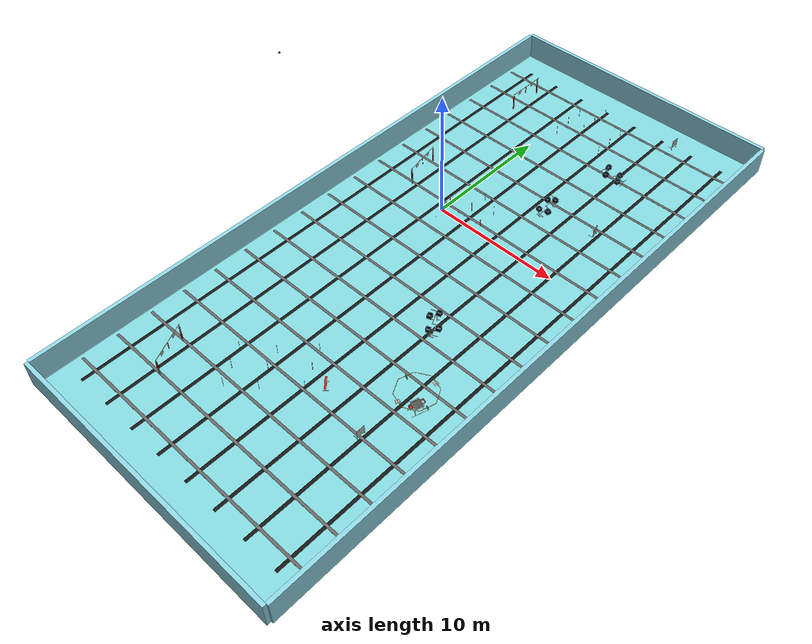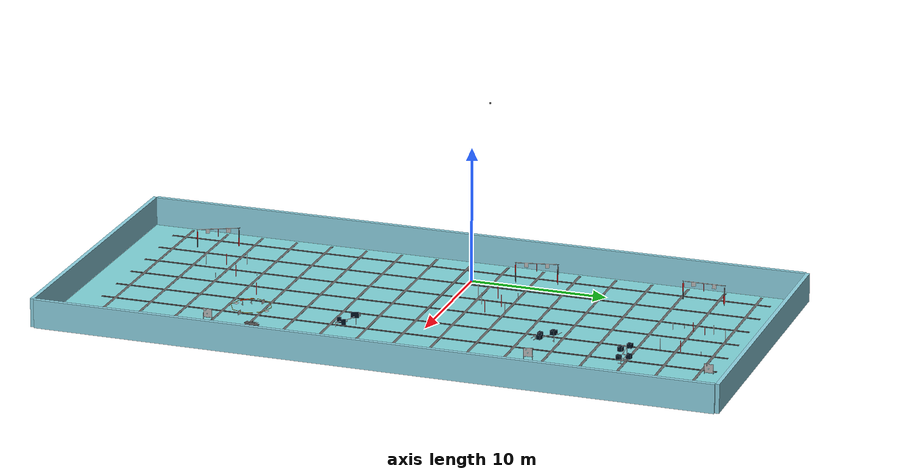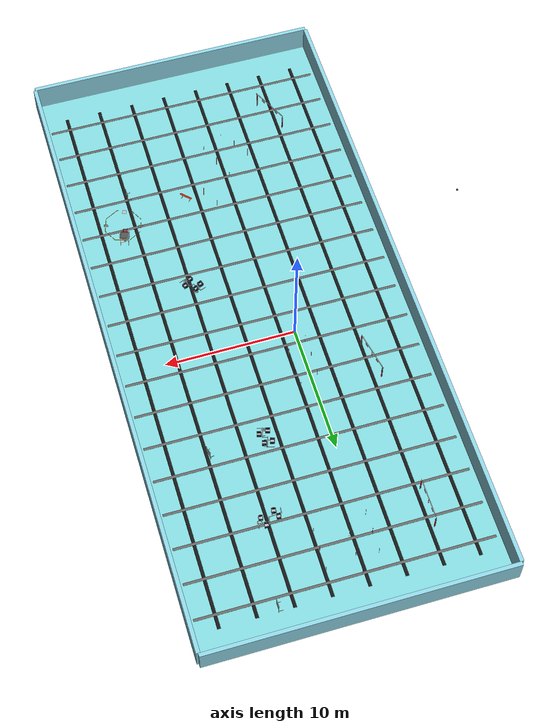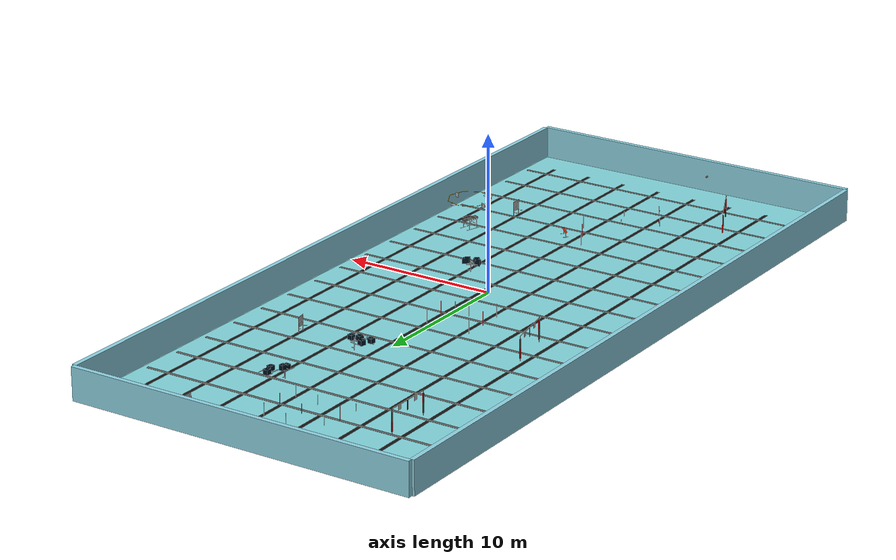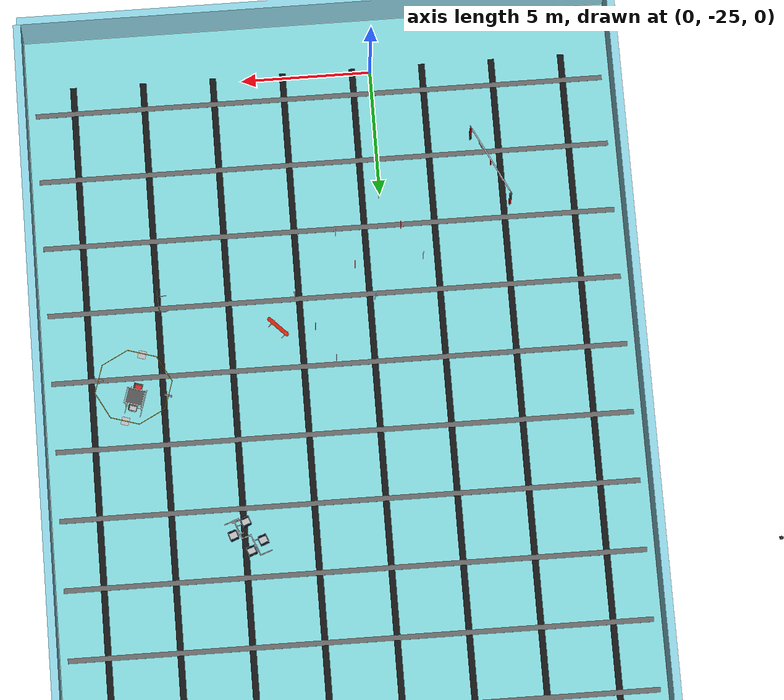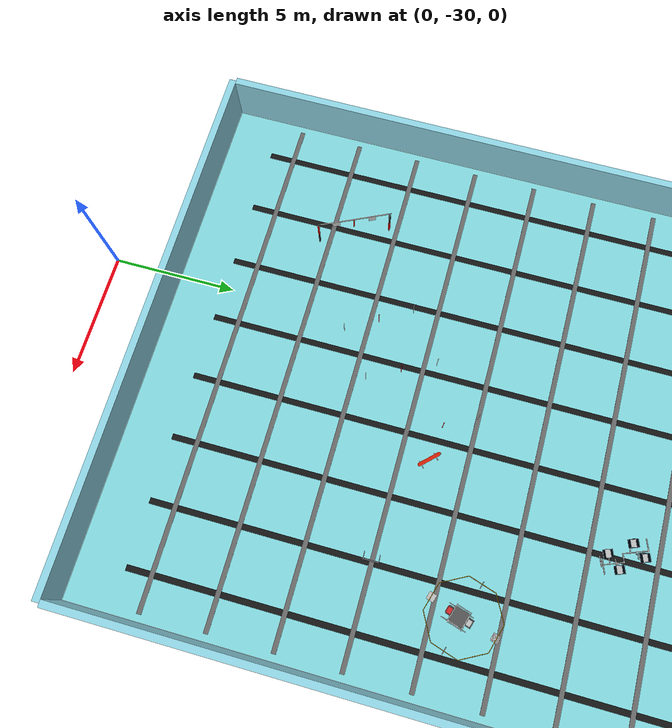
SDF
<sdf version='1.7'>
  <world name='default'>
    <light name='sun' type='directional'>
      <cast_shadows>0</cast_shadows>
      <pose>0 0 10 0 -0 0</pose>
      <diffuse>0.8 0.8 0.8 1</diffuse>
      <specular>0.2 0.2 0.2 1</specular>
      <attenuation>
        <range>1000</range>
        <constant>0.9</constant>
        <linear>0.01</linear>
        <quadratic>0.001</quadratic>
      </attenuation>
      <direction>-0.5 0.1 -0.9</direction>
      <spot>
        <inner_angle>0</inner_angle>
        <outer_angle>0</outer_angle>
        <falloff>0</falloff>
      </spot>
    </light>
    <light name='user_point_light_0' type='point'>
      <pose>-6 -3.5 1 0 -0 0</pose>
      <diffuse>0.5 0.5 0.5 1</diffuse>
      <specular>0.1 0.1 0.1 1</specular>
      <attenuation>
        <range>20</range>
        <constant>0.5</constant>
        <linear>0.01</linear>
        <quadratic>0.001</quadratic>
      </attenuation>
      <cast_shadows>0</cast_shadows>
      <direction>0 0 -1</direction>
    </light>
    <gravity>0 0 -9.8</gravity>
    <magnetic_field>6e-06 2.3e-05 -4.2e-05</magnetic_field>
    <atmosphere type='adiabatic'/>
    <physics type='ode'>
      <max_step_size>0.001</max_step_size>
      <real_time_factor>1</real_time_factor>
      <real_time_update_rate>1000</real_time_update_rate>
    </physics>
    <scene>
      <ambient>0.4 0.4 0.4 1</ambient>
      <background>0.7 0.7 0.7 1</background>
      <shadows>1</shadows>
    </scene>
    <wind/>
    <spherical_coordinates>
      <surface_model>EARTH_WGS84</surface_model>
      <latitude_deg>0</latitude_deg>
      <longitude_deg>0</longitude_deg>
      <elevation>0</elevation>
      <heading_deg>0</heading_deg>
    </spherical_coordinates>
    <model name='woollett_lane_overlay'>
      <static>1</static>
      <pose>2 -3 -2.1376 0 0 0</pose>
      <link name='woollett_lane_overlay_link'>
        <visual name='woollett_floor_surface'>
          <pose>0 0 0 0 0 0</pose>
          <geometry>
            <box>
              <size>22.84 49.98 0.008</size>
            </box>
          </geometry>
          <material>
            <ambient>0.5 0.83 0.85 1</ambient>
            <diffuse>0.5 0.83 0.85 1</diffuse>
            <specular>0.1 0.1 0.1 1</specular>
          </material>
        </visual>
        <visual name='woollett_long_lane_1'>
          <pose>-9.59 0 0.007 0 0 0</pose>
          <geometry><box><size>0.25 46 0.006</size></box></geometry>
          <material><ambient>0.08 0.08 0.08 1</ambient><diffuse>0.08 0.08 0.08 1</diffuse></material>
        </visual>
        <visual name='woollett_long_lane_2'>
          <pose>-6.85 0 0.007 0 0 0</pose>
          <geometry><box><size>0.25 46 0.006</size></box></geometry>
          <material><ambient>0.08 0.08 0.08 1</ambient><diffuse>0.08 0.08 0.08 1</diffuse></material>
        </visual>
        <visual name='woollett_long_lane_3'>
          <pose>-4.11 0 0.007 0 0 0</pose>
          <geometry><box><size>0.25 46 0.006</size></box></geometry>
          <material><ambient>0.08 0.08 0.08 1</ambient><diffuse>0.08 0.08 0.08 1</diffuse></material>
        </visual>
        <visual name='woollett_long_lane_4'>
          <pose>-1.37 0 0.007 0 0 0</pose>
          <geometry><box><size>0.25 46 0.006</size></box></geometry>
          <material><ambient>0.08 0.08 0.08 1</ambient><diffuse>0.08 0.08 0.08 1</diffuse></material>
        </visual>
        <visual name='woollett_long_lane_5'>
          <pose>1.37 0 0.007 0 0 0</pose>
          <geometry><box><size>0.25 46 0.006</size></box></geometry>
          <material><ambient>0.08 0.08 0.08 1</ambient><diffuse>0.08 0.08 0.08 1</diffuse></material>
        </visual>
        <visual name='woollett_long_lane_6'>
          <pose>4.11 0 0.007 0 0 0</pose>
          <geometry><box><size>0.25 46 0.006</size></box></geometry>
          <material><ambient>0.08 0.08 0.08 1</ambient><diffuse>0.08 0.08 0.08 1</diffuse></material>
        </visual>
        <visual name='woollett_long_lane_7'>
          <pose>6.85 0 0.007 0 0 0</pose>
          <geometry><box><size>0.25 46 0.006</size></box></geometry>
          <material><ambient>0.08 0.08 0.08 1</ambient><diffuse>0.08 0.08 0.08 1</diffuse></material>
        </visual>
        <visual name='woollett_long_lane_8'>
          <pose>9.59 0 0.007 0 0 0</pose>
          <geometry><box><size>0.25 46 0.006</size></box></geometry>
          <material><ambient>0.08 0.08 0.08 1</ambient><diffuse>0.08 0.08 0.08 1</diffuse></material>
        </visual>
      </link>
    </model>
    <model name='pool_floor'>
      <static>1</static>
      <pose>2 -3 0 0 0 0</pose>
      <link name='pool_floor_link'>
        <collision name='pool_floor_collision'>
          <geometry>
            <box>
              <size>22.86 50 0.1</size>
            </box>
          </geometry>
          <pose>0 0 -2.1836 0 0 0</pose>
          <max_contacts>10</max_contacts>
          <surface>
            <friction>
              <ode>
                <mu>0.5</mu>
                <mu2>0.5</mu2>
              </ode>
            </friction>
            <contact>
              <ode/>
            </contact>
            <bounce/>
          </surface>
        </collision>
        <self_collide>0</self_collide>
        <enable_wind>0</enable_wind>
        <kinematic>0</kinematic>
      </link>
    </model>
    <!-- North wall: inner face at y=22 (50 m water length). -->
    <model name='wall_north'>
      <static>1</static>
      <pose>2 22.15 -1.0668 0 0 0</pose>
      <link name='wall_north_link'>
        <collision name='wall_north_collision'>
          <geometry>
            <box>
              <size>23.16 0.3 2.1336</size>
            </box>
          </geometry>
          <max_contacts>10</max_contacts>
          <surface>
            <friction>
              <ode>
                <mu>0.5</mu>
                <mu2>0.5</mu2>
              </ode>
            </friction>
            <contact>
              <ode/>
            </contact>
            <bounce/>
          </surface>
        </collision>
        <visual name='wall_north_visual'>
          <geometry>
            <box>
              <size>23.16 0.3 2.1336</size>
            </box>
          </geometry>
          <material>
            <ambient>0.55 0.82 0.88 1</ambient>
            <diffuse>0.55 0.82 0.88 1</diffuse>
            <specular>0.15 0.15 0.15 1</specular>
          </material>
        </visual>
        <self_collide>0</self_collide>
        <enable_wind>0</enable_wind>
        <kinematic>0</kinematic>
      </link>
    </model>
    <!-- South wall: inner face at y=-28 (50 m water length). -->
    <model name='wall_south'>
      <static>1</static>
      <pose>2 -28.15 -1.0668 0 0 0</pose>
      <link name='wall_south_link'>
        <collision name='wall_south_collision'>
          <geometry>
            <box>
              <size>23.16 0.3 2.1336</size>
            </box>
          </geometry>
          <max_contacts>10</max_contacts>
          <surface>
            <friction>
              <ode>
                <mu>0.5</mu>
                <mu2>0.5</mu2>
              </ode>
            </friction>
            <contact>
              <ode/>
            </contact>
            <bounce/>
          </surface>
        </collision>
        <visual name='wall_south_visual'>
          <geometry>
            <box>
              <size>23.16 0.3 2.1336</size>
            </box>
          </geometry>
          <material>
            <ambient>0.55 0.82 0.88 1</ambient>
            <diffuse>0.55 0.82 0.88 1</diffuse>
            <specular>0.15 0.15 0.15 1</specular>
          </material>
        </visual>
        <self_collide>0</self_collide>
        <enable_wind>0</enable_wind>
        <kinematic>0</kinematic>
      </link>
    </model>
    <!-- West wall: inner face at x=-9.43 (22.86 m / 25 yd water width). -->
    <model name='wall_west'>
      <static>1</static>
      <pose>-9.58 -3 -1.0668 0 0 0</pose>
      <link name='wall_west_link'>
        <collision name='wall_west_collision'>
          <geometry>
            <box>
              <size>0.3 50 2.1336</size>
            </box>
          </geometry>
          <max_contacts>10</max_contacts>
          <surface>
            <friction>
              <ode>
                <mu>0.5</mu>
                <mu2>0.5</mu2>
              </ode>
            </friction>
            <contact>
              <ode/>
            </contact>
            <bounce/>
          </surface>
        </collision>
        <visual name='wall_west_visual'>
          <geometry>
            <box>
              <size>0.3 50 2.1336</size>
            </box>
          </geometry>
          <material>
            <ambient>0.55 0.82 0.88 1</ambient>
            <diffuse>0.55 0.82 0.88 1</diffuse>
            <specular>0.15 0.15 0.15 1</specular>
          </material>
        </visual>
        <self_collide>0</self_collide>
        <enable_wind>0</enable_wind>
        <kinematic>0</kinematic>
      </link>
    </model>
    <!-- East wall: inner face at x=13.43 (22.86 m / 25 yd water width). -->
    <model name='wall_east'>
      <static>1</static>
      <pose>13.58 -3 -1.0668 0 0 0</pose>
      <link name='wall_east_link'>
        <collision name='wall_east_collision'>
          <geometry>
            <box>
              <size>0.3 50 2.1336</size>
            </box>
          </geometry>
          <max_contacts>10</max_contacts>
          <surface>
            <friction>
              <ode>
                <mu>0.5</mu>
                <mu2>0.5</mu2>
              </ode>
            </friction>
            <contact>
              <ode/>
            </contact>
            <bounce/>
          </surface>
        </collision>
        <visual name='wall_east_visual'>
          <geometry>
            <box>
              <size>0.3 50 2.1336</size>
            </box>
          </geometry>
          <material>
            <ambient>0.55 0.82 0.88 1</ambient>
            <diffuse>0.55 0.82 0.88 1</diffuse>
            <specular>0.15 0.15 0.15 1</specular>
          </material>
        </visual>
        <self_collide>0</self_collide>
        <enable_wind>0</enable_wind>
        <kinematic>0</kinematic>
      </link>
    </model>
    <model name='lane_marker_1'>
      <static>1</static>
      <pose>2 18.92 -2.1286 0 0 0</pose>
      <link name='lane_marker_1_link'>
        <visual name='lane_marker_1_visual'>
          <geometry>
            <box>
              <size>22.26 0.2 0.01</size>
            </box>
          </geometry>
          <material>
            <ambient>0.4 0.4 0.4 1</ambient>
            <diffuse>0.4 0.4 0.4 1</diffuse>
            <specular>0.1 0.1 0.1 1</specular>
          </material>
        </visual>
        <self_collide>0</self_collide>
        <enable_wind>0</enable_wind>
        <kinematic>0</kinematic>
      </link>
    </model>
    <model name='lane_marker_2'>
      <static>1</static>
      <pose>2 16.18 -2.1286 0 0 0</pose>
      <link name='lane_marker_2_link'>
        <visual name='lane_marker_2_visual'>
          <geometry>
            <box>
              <size>22.26 0.2 0.01</size>
            </box>
          </geometry>
          <material>
            <ambient>0.4 0.4 0.4 1</ambient>
            <diffuse>0.4 0.4 0.4 1</diffuse>
            <specular>0.1 0.1 0.1 1</specular>
          </material>
        </visual>
        <self_collide>0</self_collide>
        <enable_wind>0</enable_wind>
        <kinematic>0</kinematic>
      </link>
    </model>
    <model name='lane_marker_3'>
      <static>1</static>
      <pose>2 13.44 -2.1286 0 0 0</pose>
      <link name='lane_marker_3_link'>
        <visual name='lane_marker_3_visual'>
          <geometry>
            <box>
              <size>22.26 0.2 0.01</size>
            </box>
          </geometry>
          <material>
            <ambient>0.4 0.4 0.4 1</ambient>
            <diffuse>0.4 0.4 0.4 1</diffuse>
            <specular>0.1 0.1 0.1 1</specular>
          </material>
        </visual>
        <self_collide>0</self_collide>
        <enable_wind>0</enable_wind>
        <kinematic>0</kinematic>
      </link>
    </model>
    <model name='lane_marker_4'>
      <static>1</static>
      <pose>2 10.70 -2.1286 0 0 0</pose>
      <link name='lane_marker_4_link'>
        <visual name='lane_marker_4_visual'>
          <geometry>
            <box>
              <size>22.26 0.2 0.01</size>
            </box>
          </geometry>
          <material>
            <ambient>0.4 0.4 0.4 1</ambient>
            <diffuse>0.4 0.4 0.4 1</diffuse>
            <specular>0.1 0.1 0.1 1</specular>
          </material>
        </visual>
        <self_collide>0</self_collide>
        <enable_wind>0</enable_wind>
        <kinematic>0</kinematic>
      </link>
    </model>
    <model name='lane_marker_5'>
      <static>1</static>
      <pose>2 7.96 -2.1286 0 0 0</pose>
      <link name='lane_marker_5_link'>
        <visual name='lane_marker_5_visual'>
          <geometry>
            <box>
              <size>22.26 0.2 0.01</size>
            </box>
          </geometry>
          <material>
            <ambient>0.4 0.4 0.4 1</ambient>
            <diffuse>0.4 0.4 0.4 1</diffuse>
            <specular>0.1 0.1 0.1 1</specular>
          </material>
        </visual>
        <self_collide>0</self_collide>
        <enable_wind>0</enable_wind>
        <kinematic>0</kinematic>
      </link>
    </model>
    <model name='lane_marker_6'>
      <static>1</static>
      <pose>2 5.22 -2.1286 0 0 0</pose>
      <link name='lane_marker_6_link'>
        <visual name='lane_marker_6_visual'>
          <geometry>
            <box>
              <size>22.26 0.2 0.01</size>
            </box>
          </geometry>
          <material>
            <ambient>0.4 0.4 0.4 1</ambient>
            <diffuse>0.4 0.4 0.4 1</diffuse>
            <specular>0.1 0.1 0.1 1</specular>
          </material>
        </visual>
        <self_collide>0</self_collide>
        <enable_wind>0</enable_wind>
        <kinematic>0</kinematic>
      </link>
    </model>
    <model name='lane_marker_7'>
      <static>1</static>
      <pose>2 2.48 -2.1286 0 0 0</pose>
      <link name='lane_marker_7_link'>
        <visual name='lane_marker_7_visual'>
          <geometry>
            <box>
              <size>22.26 0.2 0.01</size>
            </box>
          </geometry>
          <material>
            <ambient>0.4 0.4 0.4 1</ambient>
            <diffuse>0.4 0.4 0.4 1</diffuse>
            <specular>0.1 0.1 0.1 1</specular>
          </material>
        </visual>
        <self_collide>0</self_collide>
        <enable_wind>0</enable_wind>
        <kinematic>0</kinematic>
      </link>
    </model>
    <model name='lane_marker_8'>
      <static>1</static>
      <pose>2 -0.26 -2.1286 0 0 0</pose>
      <link name='lane_marker_8_link'>
        <visual name='lane_marker_8_visual'>
          <geometry>
            <box>
              <size>22.26 0.2 0.01</size>
            </box>
          </geometry>
          <material>
            <ambient>0.4 0.4 0.4 1</ambient>
            <diffuse>0.4 0.4 0.4 1</diffuse>
            <specular>0.1 0.1 0.1 1</specular>
          </material>
        </visual>
        <self_collide>0</self_collide>
        <enable_wind>0</enable_wind>
        <kinematic>0</kinematic>
      </link>
    </model>
    <model name='lane_marker_9'>
      <static>1</static>
      <pose>2 -3.00 -2.1286 0 0 0</pose>
      <link name='lane_marker_9_link'>
        <visual name='lane_marker_9_visual'>
          <geometry>
            <box>
              <size>22.26 0.2 0.01</size>
            </box>
          </geometry>
          <material>
            <ambient>0.4 0.4 0.4 1</ambient>
            <diffuse>0.4 0.4 0.4 1</diffuse>
            <specular>0.1 0.1 0.1 1</specular>
          </material>
        </visual>
        <self_collide>0</self_collide>
        <enable_wind>0</enable_wind>
        <kinematic>0</kinematic>
      </link>
    </model>
    <model name='lane_marker_10'>
      <static>1</static>
      <pose>2 -5.74 -2.1286 0 0 0</pose>
      <link name='lane_marker_10_link'>
        <visual name='lane_marker_10_visual'>
          <geometry>
            <box>
              <size>22.26 0.2 0.01</size>
            </box>
          </geometry>
          <material>
            <ambient>0.4 0.4 0.4 1</ambient>
            <diffuse>0.4 0.4 0.4 1</diffuse>
            <specular>0.1 0.1 0.1 1</specular>
          </material>
        </visual>
        <self_collide>0</self_collide>
        <enable_wind>0</enable_wind>
        <kinematic>0</kinematic>
      </link>
    </model>
    <model name='lane_marker_11'>
      <static>1</static>
      <pose>2 -8.48 -2.1286 0 0 0</pose>
      <link name='lane_marker_11_link'>
        <visual name='lane_marker_11_visual'>
          <geometry>
            <box>
              <size>22.26 0.2 0.01</size>
            </box>
          </geometry>
          <material>
            <ambient>0.4 0.4 0.4 1</ambient>
            <diffuse>0.4 0.4 0.4 1</diffuse>
            <specular>0.1 0.1 0.1 1</specular>
          </material>
        </visual>
        <self_collide>0</self_collide>
        <enable_wind>0</enable_wind>
        <kinematic>0</kinematic>
      </link>
    </model>
    <model name='lane_marker_12'>
      <static>1</static>
      <pose>2 -11.22 -2.1286 0 0 0</pose>
      <link name='lane_marker_12_link'>
        <visual name='lane_marker_12_visual'>
          <geometry>
            <box>
              <size>22.26 0.2 0.01</size>
            </box>
          </geometry>
          <material>
            <ambient>0.4 0.4 0.4 1</ambient>
            <diffuse>0.4 0.4 0.4 1</diffuse>
            <specular>0.1 0.1 0.1 1</specular>
          </material>
        </visual>
        <self_collide>0</self_collide>
        <enable_wind>0</enable_wind>
        <kinematic>0</kinematic>
      </link>
    </model>
    <model name='lane_marker_13'>
      <static>1</static>
      <pose>2 -13.96 -2.1286 0 0 0</pose>
      <link name='lane_marker_13_link'>
        <visual name='lane_marker_13_visual'>
          <geometry>
            <box>
              <size>22.26 0.2 0.01</size>
            </box>
          </geometry>
          <material>
            <ambient>0.4 0.4 0.4 1</ambient>
            <diffuse>0.4 0.4 0.4 1</diffuse>
            <specular>0.1 0.1 0.1 1</specular>
          </material>
        </visual>
        <self_collide>0</self_collide>
        <enable_wind>0</enable_wind>
        <kinematic>0</kinematic>
      </link>
    </model>
    <model name='lane_marker_14'>
      <static>1</static>
      <pose>2 -16.70 -2.1286 0 0 0</pose>
      <link name='lane_marker_14_link'>
        <visual name='lane_marker_14_visual'>
          <geometry>
            <box>
              <size>22.26 0.2 0.01</size>
            </box>
          </geometry>
          <material>
            <ambient>0.4 0.4 0.4 1</ambient>
            <diffuse>0.4 0.4 0.4 1</diffuse>
            <specular>0.1 0.1 0.1 1</specular>
          </material>
        </visual>
        <self_collide>0</self_collide>
        <enable_wind>0</enable_wind>
        <kinematic>0</kinematic>
      </link>
    </model>
    <model name='lane_marker_15'>
      <static>1</static>
      <pose>2 -19.44 -2.1286 0 0 0</pose>
      <link name='lane_marker_15_link'>
        <visual name='lane_marker_15_visual'>
          <geometry>
            <box>
              <size>22.26 0.2 0.01</size>
            </box>
          </geometry>
          <material>
            <ambient>0.4 0.4 0.4 1</ambient>
            <diffuse>0.4 0.4 0.4 1</diffuse>
            <specular>0.1 0.1 0.1 1</specular>
          </material>
        </visual>
        <self_collide>0</self_collide>
        <enable_wind>0</enable_wind>
        <kinematic>0</kinematic>
      </link>
    </model>
    <model name='lane_marker_16'>
      <static>1</static>
      <pose>2 -22.18 -2.1286 0 0 0</pose>
      <link name='lane_marker_16_link'>
        <visual name='lane_marker_16_visual'>
          <geometry>
            <box>
              <size>22.26 0.2 0.01</size>
            </box>
          </geometry>
          <material>
            <ambient>0.4 0.4 0.4 1</ambient>
            <diffuse>0.4 0.4 0.4 1</diffuse>
            <specular>0.1 0.1 0.1 1</specular>
          </material>
        </visual>
        <self_collide>0</self_collide>
        <enable_wind>0</enable_wind>
        <kinematic>0</kinematic>
      </link>
    </model>
    <model name='lane_marker_17'>
      <static>1</static>
      <pose>2 -24.92 -2.1286 0 0 0</pose>
      <link name='lane_marker_17_link'>
        <visual name='lane_marker_17_visual'>
          <geometry>
            <box>
              <size>22.26 0.2 0.01</size>
            </box>
          </geometry>
          <material>
            <ambient>0.4 0.4 0.4 1</ambient>
            <diffuse>0.4 0.4 0.4 1</diffuse>
            <specular>0.1 0.1 0.1 1</specular>
          </material>
        </visual>
        <self_collide>0</self_collide>
        <enable_wind>0</enable_wind>
        <kinematic>0</kinematic>
      </link>
    </model>
    <!-- **** 4 × GATE **** -->
    <include>
      <uri>model://robosub_gate</uri>
      <name>robosub_gate_1</name>
      <pose>-5.000000 15.750000 -1.500000 0.000000 0.000000 0.000187</pose>
    </include>
    <include>
      <uri>model://robosub_gate</uri>
      <name>robosub_gate_2</name>
      <pose>-5 3.25 -1.5 0 0 0.2</pose>
    </include>
    <include>
      <uri>model://robosub_gate</uri>
      <name>robosub_gate_4</name>
      <pose>-4.383510 -21.096700 -1.500000 0.000000 0.000000 0.446470</pose>
    </include>
    <!-- **** 4 × TORPEDO TARGET **** -->
    <include>
      <uri>model://robosub_torpedo</uri>
      <name>robosub_torpedo_1</name>
      <pose>7.197310 20.681072 -2.108636 1.570116 -0.000414 3.136814</pose>
    </include>
    <include>
      <uri>model://robosub_torpedo</uri>
      <name>robosub_torpedo_2</name>
      <pose>8.4 8 -2 1.57 0 -2.9</pose>
    </include>
    <include>
      <uri>model://robosub_torpedo</uri>
      <name>robosub_torpedo_4</name>
      <pose>8.665620 -15.808700 -2.000010 1.570030 -0.000209 -3.116060</pose>
    </include>
    <!-- **** 4 × BIN **** -->
    <include>
      <uri>model://robosub_bin</uri>
      <name>robosub_bin_1</name>
      <pose>6.917767 13.716724 -1.607390 0.000000 0.000000 1.455293</pose>
    </include>
    <include>
      <uri>model://robosub_bin</uri>
      <name>robosub_bin_2</name>
      <pose>4.7 6 -1.6 0 0 -0.25</pose>
    </include>
    <include>
      <uri>model://robosub_bin</uri>
      <name>robosub_bin_3</name>
      <pose>6.841690 -7.873360 -1.600000 0.000000 0.000000 0.350000</pose>
    </include>
    <!-- **** 4 × OCTAGON **** -->
    <include>
      <uri>model://robosub_octagon</uri>
      <name>robosub_octagon_4</name>
      <pose>9.934710 -12.970200 -1.950000 0.000000 0.000000 -0.300000</pose>
    </include>
    <!-- **** ANIMALS FOR ALL OCTAGONS **** -->
    <include>
      <uri>model://robosub_octagon_animals</uri>
      <name>robosub_octagon_animals_4</name>
      <pose>8.645010 -12.571200 -0.600000 0.000000 0.000000 -0.300000</pose>
    </include>
    <!-- PATH MARKER -->
    <include>
      <uri>model://robosub_path</uri>
      <name>robosub_path_1</name>
      <pose>4.268290 -15.525900 -2.133600 0.000000 0.000000 2.336730</pose>
    </include>
    <!-- SLALOM PIPES -->
    <include>
      <uri>model://robosub_slalom</uri>
      <name>robosub_slalom_1_1</name>
      <pose>-0.750791 16.256712 -2.087427 0.000000 0.000000 1.570000</pose>
    </include>
    <include>
      <uri>model://robosub_slalom</uri>
      <name>robosub_slalom_1_2</name>
      <pose>0.921462 17.575613 -1.888925 0.000000 0.000000 1.570000</pose>
    </include>
    <include>
      <uri>model://robosub_slalom</uri>
      <name>robosub_slalom_1_3</name>
      <pose>3.249127 16.511126 -2.183931 0.000000 0.000000 1.570000</pose>
    </include>
    <include>
      <uri>model://robosub_slalom</uri>
      <name>robosub_slalom_2_1</name>
      <pose>-0.75 1.75 -1.35 0 0 1.57</pose>
    </include>
    <include>
      <uri>model://robosub_slalom</uri>
      <name>robosub_slalom_2_2</name>
      <pose>0.75 2.5 -1.35 0 0 1.57</pose>
    </include>
    <include>
      <uri>model://robosub_slalom</uri>
      <name>robosub_slalom_2_3</name>
      <pose>2.25 1.75 -1.35 0 0 1.57</pose>
    </include>
    <include>
      <uri>model://robosub_slalom</uri>
      <name>robosub_slalom_4_1</name>
      <pose>-0.746627 -19.014100 -1.350000 0.000000 0.000000 2.104880</pose>
    </include>
    <include>
      <uri>model://robosub_slalom</uri>
      <name>robosub_slalom_4_2</name>
      <pose>1.136370 -17.553400 -1.350000 0.000000 0.000000 2.036010</pose>
    </include>
    <include>
      <uri>model://robosub_slalom</uri>
      <name>robosub_slalom_4_3</name>
      <pose>2.831720 -15.332400 -1.879180 0.000000 0.000000 2.075350</pose>
    </include>
    <gui fullscreen='0'>
      <camera name='user_camera'>
        <!-- Lane A baseline: 3 m behind / above the spawn, looking down-lane. -->
        <pose>-12.5 15.5 2.5 0 0.45 0</pose>
        <view_controller>orbit</view_controller>
        <projection_type>perspective</projection_type>
      </camera>
    </gui>
    <!-- Pool overhead camera model -->
    <model name="pool_camera">
      <static>true</static>
      <pose>-13 -3 9 0 0.65 0</pose>
      <link name="pool_camera_link">
        <pose>0 0 0 0 0 0</pose>
        <visual name="camera_visual">
          <geometry>
            <box>
              <size>0.1 0.1 0.1</size>
            </box>
          </geometry>
          <material>
            <ambient>0.1 0.1 0.1 1</ambient>
            <diffuse>0.1 0.1 0.1 1</diffuse>
          </material>
        </visual>
        <sensor name="camera_sensor" type="camera">
          <update_rate>30.0</update_rate>
          <camera name="pool_camera">
            <horizontal_fov>1.36136</horizontal_fov>
            <image>
              <width>640</width>
              <height>480</height>
              <format>B8G8R8</format>
            </image>
            <clip>
              <near>0.02</near>
              <far>300</far>
            </clip>
            <noise>
              <type>gaussian</type>
              <mean>0.0</mean>
              <stddev>0.007</stddev>
            </noise>
          </camera>
          <plugin name="camera_controller" filename="libgazebo_ros_camera.so">
            <alwaysOn>true</alwaysOn>
            <updateRate>30.0</updateRate>
            <cameraName>pool_camera</cameraName>
            <imageTopicName>image_raw</imageTopicName>
            <cameraInfoTopicName>camera_info</cameraInfoTopicName>
            <frameName>pool_camera_link</frameName>
            <hackBaseline>0.07</hackBaseline>
            <distortionK1>0.0</distortionK1>
            <distortionK2>0.0</distortionK2>
            <distortionK3>0.0</distortionK3>
            <distortionT1>0.0</distortionT1>
            <distortionT2>0.0</distortionT2>
          </plugin>
        </sensor>
      </link>
    </model>
  </world>
</sdf>

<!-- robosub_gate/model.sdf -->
<sdf version="1.6">
	<model name="robosub_gate">
		<static>true</static>
    	<pose>0 0 0 0 0 0</pose>
		<link name="robosub_gate">
			<pose>0 0 0 0 0 0</pose>
			<collision name="robosub_gate_col">
				<pose>0 0 0 0 0 0</pose>
				<geometry>
					<mesh>
						<uri>model://robosub_gate/meshes/gate.dae</uri>
					</mesh>
				</geometry>
			</collision>
			<visual name="robosub_gate_vis">
				<pose>0 0 0 0 0 0</pose>
				<geometry>
					<mesh>
						<uri>model://robosub_gate/meshes/gate.dae</uri>
					</mesh>
				</geometry>
			</visual>

		</link>
	</model>
</sdf>

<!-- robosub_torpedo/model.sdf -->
<sdf version="1.6">
	<model name="robosub_torpedo">
		<static>true</static>
    	<pose>0 0 0 0 0 0</pose>
		<link name="robosub_torpedo">
			<pose>0 0 0 0 0 0</pose>
			<collision name="robosub_torpedo_col">
				<pose>0 0 0 0 0 0</pose>
				<geometry>
					<mesh>
						<uri>model://robosub_torpedo/meshes/torpedo.dae</uri>
					</mesh>
				</geometry>
			</collision>
			<visual name="robosub_torpedo_vis">
				<pose>0 0 0 0 0 0</pose>
				<geometry>
					<mesh>
						<uri>model://robosub_torpedo/meshes/torpedo.dae</uri>
					</mesh>
				</geometry>
			</visual>

		</link>
	</model>
</sdf>

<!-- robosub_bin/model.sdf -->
<sdf version="1.6">
	<model name="robosub_bin">
		<static>true</static>
    	<pose>0 0 0 0 0 0</pose>
		<link name="robosub_bin">
			<pose>0 0 0 0 0 0</pose>
			<collision name="robosub_bin_col">
				<pose>0 0 0 0 0 0</pose>
				<geometry>
					<mesh>
						<uri>model://robosub_bin/meshes/bin.dae</uri>
					</mesh>
				</geometry>
			</collision>
			<visual name="robosub_bin_vis">
				<pose>0 0 0 0 0 0</pose>
				<geometry>
					<mesh>
						<uri>model://robosub_bin/meshes/bin.dae</uri>
					</mesh>
				</geometry>
			</visual>

		</link>

		<!-- Baskets -->
		<link name="basket_1_link">
			<pose>-0.7432 0.2978 -0.1486 0 0 0</pose>
		</link>
		<link name="basket_2_link">
			<pose>-0.4462 1.5502 0.3349 0 0 0</pose>
		</link>
		<link name="basket_3_link">
			<pose>-0.0937 0.6191 -0.0805 0 0 0</pose>
		</link>
		<link name="basket_4_link">
			<pose>-1.0420 1.2816 0.0919 0 0 0</pose>
		</link>

		<!-- Images -->
		<link name="bin_fire_1_link">
			<pose>-0.7480 0.2883 -0.2803 0 0 0</pose>
		</link>
		<link name="bin_fire_2_link">
			<pose>-0.4330 1.5468 0.2042 0 0 0</pose>
		</link>
		<link name="bin_blood_1_link">
			<pose>-0.0880 0.6145 -0.2168 0 0 0</pose>
		</link>
		<link name="bin_blood_2_link">
			<pose>-1.0381 1.2940 -0.0540 0 0 0</pose>
		</link>

	</model>
</sdf>

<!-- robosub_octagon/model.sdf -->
<sdf version="1.6">
  <model name="robosub_octagon">
    <static>true</static>
    <pose>0 0 0 0 0 0</pose>
    <link name="robosub_octagon">
      <pose>0 0 0 0 0 0</pose>

      <!-- Main collision for the octagon walls -->
      <collision name="octagon_walls_col">
        <pose>0 0 0 0 0 0</pose>
        <geometry>
          <mesh>
            <uri>model://robosub_octagon/meshes/octagon.dae</uri>
          </mesh>
        </geometry>
        <surface>
          <friction>
            <ode>
              <mu>100.0</mu>
              <mu2>100.0</mu2>
              <slip1>0.0</slip1>
              <slip2>0.0</slip2>
            </ode>
          </friction>
          <bounce>
            <restitution_coefficient>0.0</restitution_coefficient>
            <threshold>100000.0</threshold>
          </bounce>
          <contact>
            <ode>
              <kp>10000000</kp>
              <kd>1000</kd>
              <max_vel>0.1</max_vel>
              <min_depth>0.001</min_depth>
            </ode>
          </contact>
        </surface>
        <max_contacts>100</max_contacts>
      </collision>

      <!-- Additional collision box for the base to prevent going under -->
      <collision name="octagon_base_col">
        <pose>0 0 -0.5 0 0 0</pose>
        <geometry>
          <box>
            <size>3.0 3.0 1.0</size>
          </box>
        </geometry>
        <surface>
          <friction>
            <ode>
              <mu>100.0</mu>
              <mu2>100.0</mu2>
            </ode>
          </friction>
        </surface>
      </collision>

      <!-- Visual representation -->
      <visual name="robosub_octagon_vis">
        <pose>0 0 0 0 0 0</pose>
        <geometry>
          <mesh>
            <uri>model://robosub_octagon/meshes/octagon.dae</uri>
          </mesh>
        </geometry>
      </visual>

      <!-- Physics properties -->
      <inertial>
        <mass>1000.0</mass>  <!-- Heavy to prevent movement -->
        <inertia>
          <ixx>1000.0</ixx>
          <iyy>1000.0</iyy>
          <izz>1000.0</izz>
          <ixy>0.0</ixy>
          <ixz>0.0</ixz>
          <iyz>0.0</iyz>
        </inertia>
      </inertial>

    </link>

    <!-- RedCross Basket Photo -->
    <link name="basket_redcross_link">
      <visual name="redcross_visual">
        <geometry>
          <plane>
            <normal>0 0 1</normal>
            <size>0.25 0.25</size>
          </plane>
        </geometry>
        <material>
          <script>
            <uri>model://robosub_octagon/materials/scripts</uri>
            <uri>model://robosub_octagon/materials/textures</uri>
            <name>OctagonRedCrossMaterial</name>
          </script>
        </material>
        <pose>0 0 0 0 0 0</pose>
      </visual>
      <pose>-0.02144 -0.431928 0.56 0 0 0</pose>
    </link>

    <!-- Warning Basket Photo -->
    <link name="basket_warning_link">
      <visual name="warning_visual">
        <geometry>
          <plane>
            <normal>0 0 1</normal>
            <size>0.25 0.25</size>
          </plane>
        </geometry>
        <material>
          <script>
            <uri>model://robosub_octagon/materials/scripts</uri>
            <uri>model://robosub_octagon/materials/textures</uri>
            <name>OctagonWarningMaterial</name>
          </script>
        </material>
        <pose>0 0 0 0 0 0</pose>
      </visual>
      <pose>-0.02144 0.431928 0.56 0 0 0</pose>
    </link>

    <!-- Table Link -->
    <link name="octagon_table_link">
      <pose>0 0 0.6245 0 0 0</pose>
    </link>

  </model>
</sdf>

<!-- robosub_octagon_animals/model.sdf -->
<sdf version="1.7">
  <model name="robosub_octagon_animals">
    <static>true</static>  <!-- Static for stability -->

    <!-- Repair hanging (facing +X) -->
    <link name="octagon_repair_link">
      <!-- Front face -->
      <visual name="visual1_front">
        <geometry>
          <plane>
            <normal>1 0 0</normal>
            <size>0.305 0.305</size>
          </plane>
        </geometry>
        <material>
          <script>
            <uri>model://robosub_octagon_animals/materials/scripts</uri>
            <uri>model://robosub_octagon_animals/materials/textures</uri>
            <name>Task5RepairMaterial</name>
          </script>
        </material>
        <cast_shadows>false</cast_shadows>
        <pose>0 0 0.1525 1.5708 0 1.5708</pose>
      </visual>
      <!-- Back face -->
      <visual name="visual1_back">
        <geometry>
          <plane>
            <normal>-1 0 0</normal>
            <size>0.305 0.305</size>
          </plane>
        </geometry>
        <material>
          <script>
            <uri>model://robosub_octagon_animals/materials/scripts</uri>
            <name>Task5BackMaterial</name>
          </script>
        </material>
        <cast_shadows>false</cast_shadows>
        <pose>0 0 0.1525 1.5708 0 1.5708</pose>
      </visual>
      <pose>0 0 0.4 0 0 0</pose>
    </link>

    <!-- Rescue hanging (facing -X) -->
    <link name="octagon_rescue_link">
      <!-- Front face -->
      <visual name="visual2_front">
        <geometry>
          <plane>
            <normal>-1 0 0</normal>
            <size>0.305 0.305</size>
          </plane>
        </geometry>
        <material>
          <script>
            <uri>model://robosub_octagon_animals/materials/scripts</uri>
            <uri>model://robosub_octagon_animals/materials/textures</uri>
            <name>Task5RescueMaterial</name>
          </script>
        </material>
        <cast_shadows>false</cast_shadows>
        <pose>0 0 0.1525 1.5708 0 -1.5708</pose>
      </visual>
      <!-- Back face -->
      <visual name="visual2_back">
        <geometry>
          <plane>
            <normal>1 0 0</normal>
            <size>0.305 0.305</size>
          </plane>
        </geometry>
        <material>
          <script>
            <uri>model://robosub_octagon_animals/materials/scripts</uri>
            <name>Task5BackMaterial</name>
          </script>
        </material>
        <cast_shadows>false</cast_shadows>
        <pose>0 0 0.1525 1.5708 0 -1.5708</pose>
      </visual>
      <pose>2.7 0 0.4 0 0 0</pose>
    </link>

    <!-- Search hanging (facing -Y) -->
    <link name="octagon_search_link">
      <!-- Front face -->
      <visual name="visual3_front">
        <geometry>
          <plane>
            <normal>0 -1 0</normal>
            <size>0.305 0.305</size>
          </plane>
        </geometry>
        <material>
          <script>
            <uri>model://robosub_octagon_animals/materials/scripts</uri>
            <uri>model://robosub_octagon_animals/materials/textures</uri>
            <name>Task5SearchMaterial</name>
          </script>
        </material>
        <cast_shadows>false</cast_shadows>
        <pose>0 0 0.1525 1.5708 0 0</pose>
      </visual>
      <!-- Back face -->
      <visual name="visual3_back">
        <geometry>
          <plane>
            <normal>0 1 0</normal>
            <size>0.305 0.305</size>
          </plane>
        </geometry>
        <material>
          <script>
            <uri>model://robosub_octagon_animals/materials/scripts</uri>
            <name>Task5BackMaterial</name>
          </script>
        </material>
        <cast_shadows>false</cast_shadows>
        <pose>0 0 0.1525 1.5708 0 0</pose>
      </visual>
      <pose>1.35 1.35 0.4 0 0 0</pose>
    </link>

    <!-- Survey hanging (facing +Y) -->
    <link name="octagon_survey_link">
      <!-- Front face -->
      <visual name="visual4_front">
        <geometry>
          <plane>
            <normal>0 1 0</normal>
            <size>0.305 0.305</size>
          </plane>
        </geometry>
        <material>
          <script>
            <uri>model://robosub_octagon_animals/materials/scripts</uri>
            <uri>model://robosub_octagon_animals/materials/textures</uri>
            <name>Task5SurveyMaterial</name>
          </script>
        </material>
        <cast_shadows>false</cast_shadows>
        <pose>0 0 0.1525 1.5708 0 3.14159</pose>
      </visual>
      <!-- Back face -->
      <visual name="visual4_back">
        <geometry>
          <plane>
            <normal>0 -1 0</normal>
            <size>0.305 0.305</size>
          </plane>
        </geometry>
        <material>
          <script>
            <uri>model://robosub_octagon_animals/materials/scripts</uri>
            <name>Task5BackMaterial</name>
          </script>
        </material>
        <cast_shadows>false</cast_shadows>
        <pose>0 0 0.1525 1.5708 0 3.14159</pose>
      </visual>
      <pose>1.35 -1.35 0.4 0 0 0</pose>
    </link>

  </model>
</sdf>

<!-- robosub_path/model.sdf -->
<sdf version="1.6">
	<model name="robosub_path">
		<static>true</static>
    	<pose>0 0 0 0 0 0</pose>
		<link name="robosub_path">
			<pose>0 0 0 0 0 0</pose>
			<collision name="robosub_path_col">
				<pose>0 0 0 0 0 0</pose>
				<geometry>
					<mesh>
						<uri>model://robosub_path/meshes/path.dae</uri>
					</mesh>
				</geometry>
			</collision>
			<visual name="robosub_path_vis">
				<pose>0 0 0 0 0 0</pose>
				<geometry>
					<mesh>
						<uri>model://robosub_path/meshes/path.dae</uri>
					</mesh>
				</geometry>
			</visual>

		</link>
	</model>
</sdf>

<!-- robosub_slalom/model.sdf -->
<sdf version="1.6">
  <model name="robosub_slalom">
    <static>true</static>
    <link name="left_white_pipe">
      <pose>-1.5 0 0.45 0 0 0</pose>
      <visual name="visual">
        <geometry>
          <cylinder>
            <radius>0.0127</radius>
            <length>0.9</length>
          </cylinder>
        </geometry>
        <material>
          <ambient>1 1 1 1</ambient>
          <diffuse>1 1 1 1</diffuse>
        </material>
      </visual>
      <collision name="collision">
        <geometry>
          <cylinder>
            <radius>0.0127</radius>
            <length>0.9</length>
          </cylinder>
        </geometry>
      </collision>
    </link>
    <link name="red_pipe">
      <pose>0 0 0.45 0 0 0</pose>
      <visual name="visual">
        <geometry>
          <cylinder>
            <radius>0.0127</radius>
            <length>0.9</length>
          </cylinder>
        </geometry>
        <material>
          <ambient>1 0 0 1</ambient>
          <diffuse>1 0 0 1</diffuse>
        </material>
      </visual>
      <collision name="collision">
        <geometry>
          <cylinder>
            <radius>0.0127</radius>
            <length>0.9</length>
          </cylinder>
        </geometry>
      </collision>
    </link>
    <link name="right_white_pipe">
      <pose>1.5 0 0.45 0 0 0</pose>
      <visual name="visual">
        <geometry>
          <cylinder>
            <radius>0.0127</radius>
            <length>0.9</length>
          </cylinder>
        </geometry>
        <material>
          <ambient>1 1 1 1</ambient>
          <diffuse>1 1 1 1</diffuse>
        </material>
      </visual>
      <collision name="collision">
        <geometry>
          <cylinder>
            <radius>0.0127</radius>
            <length>0.9</length>
          </cylinder>
        </geometry>
      </collision>
    </link>
  </model>
</sdf>
